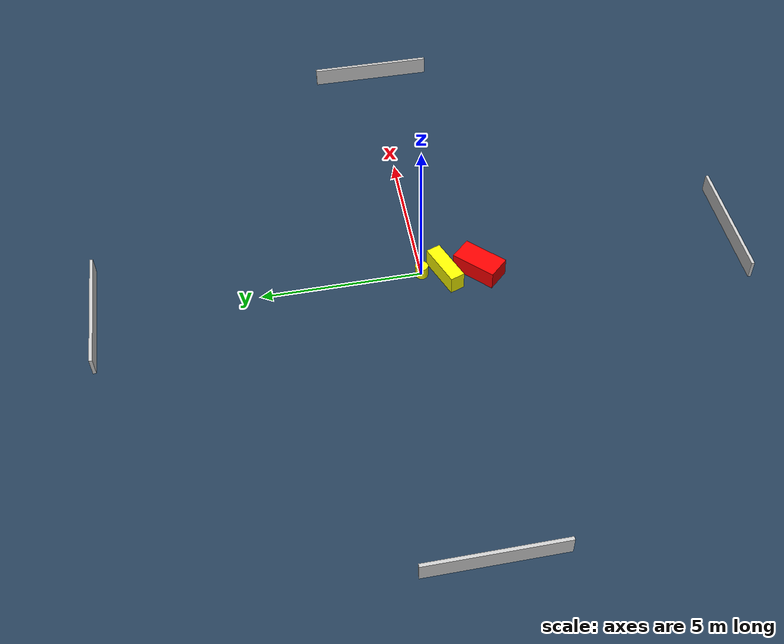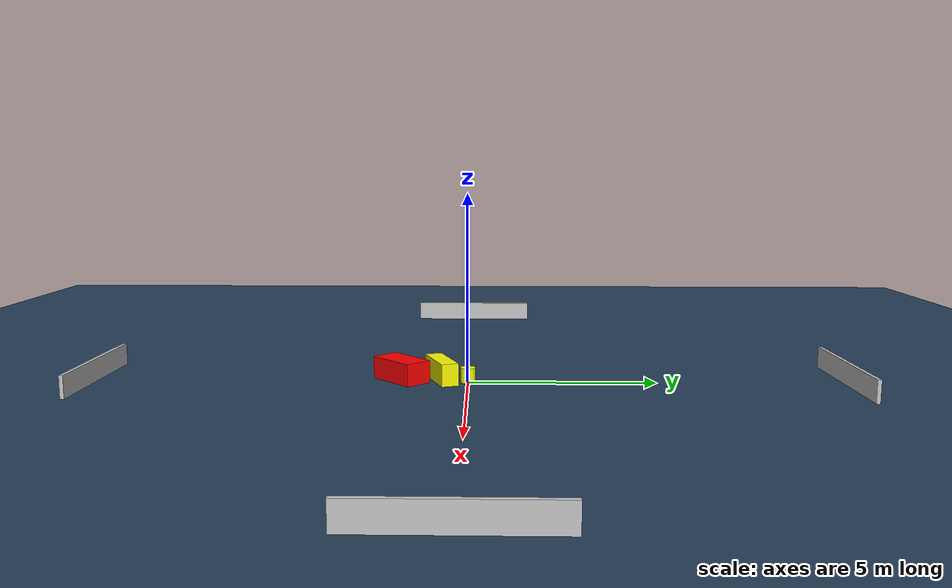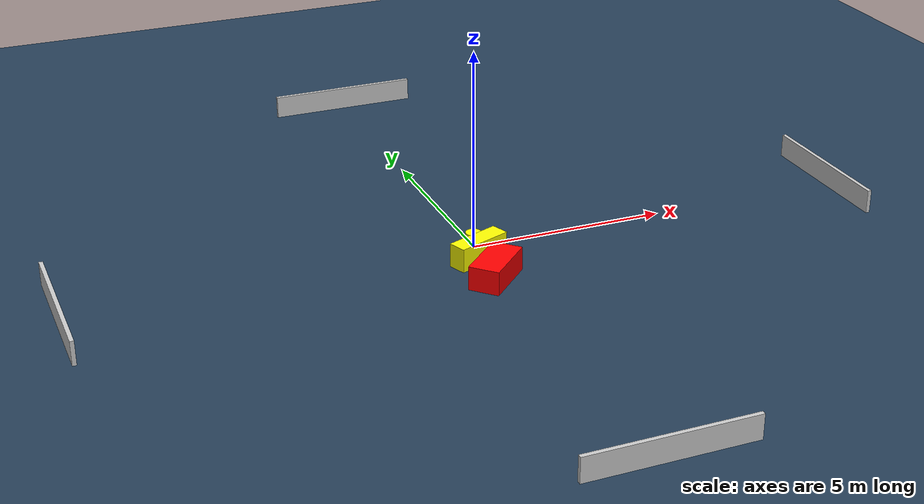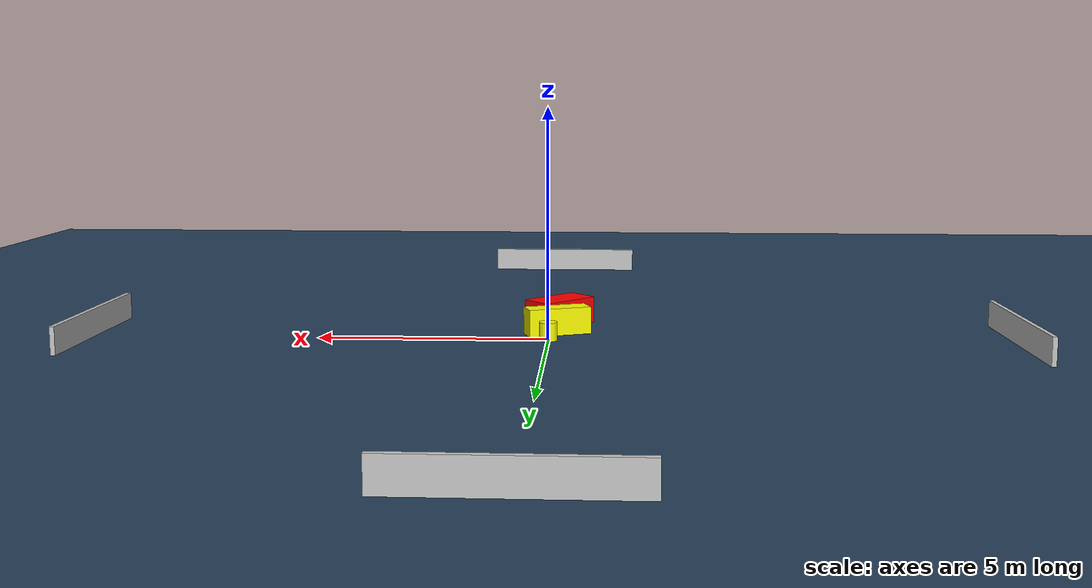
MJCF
<?xml version="1.0" ?>
<mujoco model="generated_environment">
  <option timestep="0.01" integrator="RK4" cone="elliptic"/>
  <default>
    <geom density="1"/>
  </default>
  <asset>
    <texture builtin="gradient" height="3072" name="skybox" rgb1="0.3 0.5 0.7" rgb2="0 0 0" type="skybox" width="512"/>
    <texture builtin="checker" height="300" name="groundplane" rgb1="0.2 0.3 0.4" rgb2="0.1 0.2 0.3" type="2d" width="300"/>
    <material name="groundplane" reflectance="0.2" texrepeat="5 5" texture="groundplane"/>
  </asset>
  <worldbody>
    <light dir="0 0 -1" directional="true" pos="0 0 1.5"/>
    <geom condim="3" friction="0.5 0.005 0.001" material="groundplane" name="floor" pos="0 0 0" size="0 0 0.05" type="plane"/>
    <body name="walls">
      <geom name="wall_1" condim="4" pos="-10.0 0.0 0.3" rgba="0.800000011920929 0.800000011920929 0.800000011920929 1.0" size="0.05 2.0 0.3" type="box"/>
      <geom name="wall_2" condim="4" pos="10.0 0.0 0.3" rgba="0.800000011920929 0.800000011920929 0.800000011920929 1.0" size="0.05 2.0 0.3" type="box"/>
      <geom name="wall_3" condim="4" pos="0.0 -10.0 0.3" rgba="0.800000011920929 0.800000011920929 0.800000011920929 1.0" size="2.0 0.05 0.3" type="box"/>
      <geom name="wall_4" condim="4" pos="0.0 10.0 0.3" rgba="0.800000011920929 0.800000011920929 0.800000011920929 1.0" size="2.0 0.05 0.3" type="box"/>
    </body>
    <body name="robot">
      <joint name="joint_x" type="slide" pos="0 0 0" axis="1 0 0"/>
      <joint name="joint_y" type="slide" pos="0 0 0" axis="0 1 0"/>
      <geom name="robot" type="cylinder" pos="0.0 0.0 0.2" size="0.2 0.2 0.0" mass="5.0" friction="1.0 0.005 0.0001" condim="4" rgba="1.0 1.0 0.0 1.0"/>
    </body>
    <body name="obstacle_1_movable">
      <geom name="obstacle_1_movable" condim="4" pos="-0.16524368207846685 -0.7077321332295933 0.3" euler="0 0 201.02376024254568" friction="0.0 0.005 0.001" rgba="1.0 1.0 0.0 1.0" size="0.710294525346824 0.2318194071046239 0.3" type="box" mass="0.1"/>
      <joint type="free"/>
    </body>
    <body name="obstacle_2_static">
      <geom name="obstacle_2_static" condim="4" pos="-0.18314451850506247 -1.784955729961144 0.3" euler="0 0 314.276548225294" friction="0.0 0.005 0.001" rgba="1.0 0.0 0.0 1.0" size="0.3792795949071461 0.7208346763319815 0.3" type="box"/>
    </body>
  </worldbody>
  <actuator>
    <motor name="actuator_x" joint="joint_x" gear="1" ctrlrange="-1 1"/>
    <motor name="actuator_y" joint="joint_y" gear="1" ctrlrange="-1 1"/>
  </actuator>
</mujoco>
